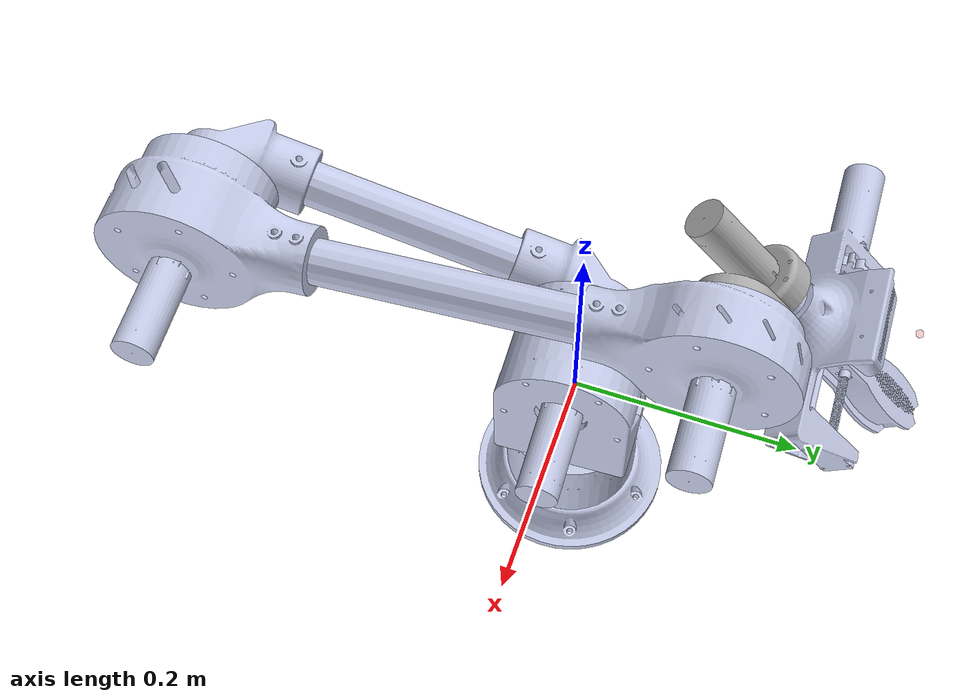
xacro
<?xml version="1.0"?>
<robot xmlns:xacro="http://www.ros.org/wiki/xacro" name="new_manipulator">

  <link name="world"/>
    <joint name="base_joint" type="fixed">
       <parent link="world"/>
       <child link="base_link"/>
       <origin rpy="0 0 0" xyz="0.0 0.0 -0.17"/>
    </joint>
  <link
    name="base_link">
    <inertial>
      <origin
        xyz="-4.43954839834948E-07 1.95574043973523E-07 0.0440575497912232"
        rpy="0 0 0" />
      <mass
        value="1.34805797919581" />
      <inertia
        ixx="0.00183694205703787"
        ixy="5.0361464147788E-10"
        ixz="-5.92029157041244E-09"
        iyy="0.00183693853196773"
        iyz="4.98996166768538E-09"
        izz="0.0033883673477115" />
    </inertial>
    <visual>
      <origin
        xyz="0 0 0"
        rpy="0 0 0" />
      <geometry>
        <mesh
          filename="package://new_manipulator/meshes/base_link.STL" />
      </geometry>
      <material
        name="">
        <color
          rgba="0.792156862745098 0.819607843137255 0.933333333333333 1" />
      </material>
    </visual>
    <collision>
      <origin
        xyz="0 0 0"
        rpy="0 0 0" />
      <geometry>
        <mesh
          filename="package://new_manipulator/meshes/base_link.STL" />
      </geometry>
    </collision>
  </link>
  <link
    name="link_1">
    <inertial>
      <origin
        xyz="0.0110500885540994 0.000490304989948245 0.178917154368919"
        rpy="0 0 0" />
      <mass
        value="1.72791251451532" />
      <inertia
        ixx="0.00405909858433948"
        ixy="3.88748531333619E-05"
        ixz="-0.000594874773801282"
        iyy="0.00318681108482776"
        iyz="-2.64513859322088E-05"
        izz="0.00260490202469402" />
    </inertial>
    <visual>
      <origin
        xyz="0 0 0"
        rpy="0 0 0" />
      <geometry>
        <mesh
          filename="package://new_manipulator/meshes/link_1.STL" />
      </geometry>
      <material
        name="">
        <color
          rgba="0.792156862745098 0.819607843137255 0.933333333333333 1" />
      </material>
    </visual>
    <collision>
      <origin
        xyz="0 0 0"
        rpy="0 0 0" />
      <geometry>
        <mesh
          filename="package://new_manipulator/meshes/link_1.STL" />
      </geometry>
    </collision>
  </link>
  <joint
    name="joint_1"
    type="revolute">
    <origin
      xyz="0 0 0"
      rpy="0 0 0" />
    <parent
      link="base_link" />
    <child
      link="link_1" />
    <axis
      xyz="0 0 1" />
    <limit
      lower="-3.14"
      upper="3.14"
      effort="0"
      velocity="0" />
  </joint>
  <link
    name="link_2">
    <inertial>
      <origin
        xyz="-0.17027759464071 0.0403800042896438 0.00767279863845977"
        rpy="0 0 0" />
      <mass
        value="0.563585271283537" />
      <inertia
        ixx="0.000360703734186374"
        ixy="0.000111701659743082"
        ixz="1.41189843579195E-11"
        iyy="0.000804395250404438"
        iyz="-7.43125516863313E-12"
        izz="0.000954580102346034" />
    </inertial>
    <visual>
      <origin
        xyz="0 0 0"
        rpy="0 0 0" />
      <geometry>
        <mesh
          filename="package://new_manipulator/meshes/link_2.STL" />
      </geometry>
      <material
        name="">
        <color
          rgba="0.792156862745098 0.819607843137255 0.933333333333333 1" />
      </material>
    </visual>
    <collision>
      <origin
        xyz="0 0 0"
        rpy="0 0 0" />
      <geometry>
        <mesh
          filename="package://new_manipulator/meshes/link_2.STL" />
      </geometry>
    </collision>
  </link>
  <joint
    name="joint_2"
    type="revolute">
    <origin
      xyz="-0.0717291734504882 -0.00318836574273278 0.204740000000002"
      rpy="1.5707963267949 0 1.61521714206045" />
    <parent
      link="link_1" />
    <child
      link="link_2" />
    <axis
      xyz="0 0 -1" />
    <limit
      lower="0"
      upper="3.14"
      effort="0"
      velocity="0" />
  </joint>
  <link
    name="link_3">
    <inertial>
      <origin
        xyz="0.127319930649459 0.25216230451183 -0.0134589515038893"
        rpy="0 0 0" />
      <mass
        value="1.88012020867171" />
      <inertia
        ixx="0.00553245606571612"
        ixy="-9.76768114159608E-05"
        ixz="2.24362816489402E-06"
        iyy="0.00232907764676428"
        iyz="8.12545637190079E-05"
        izz="0.00388219252209916" />
    </inertial>
    <visual>
      <origin
        xyz="0 0 0"
        rpy="0 0 0" />
      <geometry>
        <mesh
          filename="package://new_manipulator/meshes/link_3.STL" />
      </geometry>
      <material
        name="">
        <color
          rgba="0.792156862745098 0.819607843137255 0.933333333333333 1" />
      </material>
    </visual>
    <collision>
      <origin
        xyz="0 0 0"
        rpy="0 0 0" />
      <geometry>
        <mesh
          filename="package://new_manipulator/meshes/link_3.STL" />
      </geometry>
    </collision>
  </link>
  <joint
    name="joint_3"
    type="revolute">
    <origin
      xyz="-0.340555167924376 0.0807599999999998 0.2056"
      rpy="1.57079632679489 1.52637551152934 0" />
    <parent
      link="link_2" />
    <child
      link="link_3" />
    <axis
      xyz="0.99901355780628 -0.0444062081159649 0" />
    <limit
      lower="-6.28"
      upper="0"
      effort="0"
      velocity="0" />
  </joint>
  <link
    name="link_4">
    <inertial>
      <origin
        xyz="-0.00286295911161408 -0.0033310528321473 -0.0155644150837439"
        rpy="0 0 0" />
      <mass
        value="0.274650886544684" />
      <inertia
        ixx="0.000206617997807796"
        ixy="-9.17161275843459E-06"
        ixz="2.87691440396262E-05"
        iyy="0.00020382708602932"
        iyz="3.34799417908772E-05"
        izz="0.000169631700790225" />
    </inertial>
    <visual>
      <origin
        xyz="0 0 0"
        rpy="0 0 0" />
      <geometry>
        <mesh
          filename="package://new_manipulator/meshes/link_4.STL" />
      </geometry>
      <material
        name="">
        <color
          rgba="0.698039215686274 0.698039215686274 0.698039215686274 1" />
      </material>
    </visual>
    <collision>
      <origin
        xyz="0 0 0"
        rpy="0 0 0" />
      <geometry>
        <mesh
          filename="package://new_manipulator/meshes/link_4.STL" />
      </geometry>
    </collision>
  </link>
  <joint
    name="joint_4"
    type="revolute">
    <origin
      xyz="0.225840625490469 0.450789374227888 -0.0240273169809807"
      rpy="-1.5707963267949 0 -1.61521714206045" />
    <parent
      link="link_3" />
    <child
      link="link_4" />
    <axis
      xyz="0 0 1" />
    <limit
      lower="-3.14"
      upper="3.14"
      effort="0"
      velocity="0" />
  </joint>
  <link
    name="link_5">
    <inertial>
      <origin
        xyz="-0.0161286511466324 -0.121540549336517 -0.120240046011032"
        rpy="0 0 0" />
      <mass
        value="0.793421245273042" />
      <inertia
        ixx="0.000671724275010425"
        ixy="-2.51602478102574E-06"
        ixz="5.71344672478053E-05"
        iyy="0.00234595437058804"
        iyz="-8.95524412371202E-05"
        izz="0.00245703255566249" />
    </inertial>
    <visual>
      <origin
        xyz="0 0 0"
        rpy="0 0 0" />
      <geometry>
        <mesh
          filename="package://new_manipulator/meshes/link_5.STL" />
      </geometry>
      <material
        name="">
        <color
          rgba="0.792156862745098 0.819607843137255 0.933333333333333 1" />
      </material>
    </visual>
    <collision>
      <origin
        xyz="0 0 0"
        rpy="0 0 0" />
      <geometry>
        <mesh
          filename="package://new_manipulator/meshes/link_5.STL" />
      </geometry>
    </collision>
  </link>
  <joint
    name="joint_5"
    type="revolute">
    <origin
      xyz="0.0406026824799595 0.0472515838404573 0.00419999999999965"
      rpy="0 1.52637551152934 0" />
    <parent
      link="link_4" />
    <child
      link="link_5" />
    <axis
      xyz="-0.0289407892178395 -0.758452389092401 -0.651085558279" />
    <limit
      lower="-3.14"
      upper="3.14"
      effort="0"
      velocity="0" />
  </joint>
  <link name="fake_link">
  <inertial>
    <origin xyz="0 0 0" rpy="0 0 0"/>
    <mass value="0.001"/>
    <inertia
      ixx="0.000001"
      ixy="0"
      ixz="0"
      iyy="0.000001"
      iyz="0"
      izz="0.000001"/>
  </inertial>
  <!-- Visual element - small, almost invisible cube -->
  <visual>
    <origin xyz="0 0 0" rpy="0 0 0"/>
    <geometry>
      <box size="0.005 0.005 0.005"/>  <!-- 5mm cube -->
    </geometry>
    <material name="fake_link_material">
      <color rgba="1.0 0.0 0.0 0.1"/>  <!-- Red with 10% opacity - almost invisible -->
    </material>
  </visual>

  <!-- Collision element - same small cube -->
  <collision>
    <origin xyz="0 0 0" rpy="0 0 0"/>
    <geometry>
      <box size="0.005 0.005 0.005"/>  <!-- Same 5mm cube -->
    </geometry>
  </collision>
</link>
  <joint name="fake_joint" type="revolute">
  <parent link="link_5"/>
  <child link="fake_link"/>
  <origin xyz="-0.06 -0.175 -0.2" rpy="-0.3 2.355 1.37"/>
  <axis xyz="0 0 1"/>  <!-- Yaw axis -->
  <limit lower="-1.14159" upper="1.14159" effort="0" velocity="0"/>
</joint>

  <link
    name="link_6">
    <inertial>
      <origin
        xyz="0.0108654286467037 8.14608749427626E-07 -0.0432633009650766"
        rpy="0 0 0" />
      <mass
        value="0.015648613105591" />
      <inertia
        ixx="1.3023223565484E-05"
        ixy="-3.28837477065242E-10"
        ixz="2.89260541241974E-06"
        iyy="1.37500799513683E-05"
        iyz="2.83301118109962E-10"
        izz="2.23321010587839E-06" />
    </inertial>
    <visual>
      <origin
        xyz="0 0 0"
        rpy="0 0 0" />
      <geometry>
        <mesh
          filename="package://new_manipulator/meshes/link_6.STL" />
      </geometry>
      <material
        name="">
        <color
          rgba="0.792156862745098 0.819607843137255 0.933333333333333 1" />
      </material>
    </visual>
    <collision>
      <origin
        xyz="0 0 0"
        rpy="0 0 0" />
      <geometry>
        <mesh
          filename="package://new_manipulator/meshes/link_6.STL" />
      </geometry>
    </collision>
  </link>
  <joint
    name="joint_6"
    type="revolute">
    <origin
      xyz="-0.00126816406153663 -0.143195811060646 -0.123111459477163"
      rpy="-3.14159265358979 1.28032965574779 3.14159265358979" />
    <parent
      link="link_5" />
    <child
      link="link_6" />
    <axis
      xyz="0.243570815678046 0 -0.969883115509251" />
    <limit
      lower="0"
      upper="10"
      effort="0"
      velocity="0" />
  </joint>
  <link
    name="link_7">
    <inertial>
      <origin
        xyz="-0.0090100621942418 -6.67420022387732E-07 -0.0358850579570688"
        rpy="0 0 0" />
      <mass
        value="0.0157888075275909" />
      <inertia
        ixx="1.29943702003999E-05"
        ixy="6.88853386935521E-11"
        ixz="-2.88493495007699E-06"
        iyy="1.37197558455964E-05"
        iyz="2.55607088581921E-10"
        izz="2.23295306978442E-06" />
    </inertial>
    <visual>
      <origin
        xyz="0 0 0"
        rpy="0 0 0" />
      <geometry>
        <mesh
          filename="package://new_manipulator/meshes/link_7.STL" />
      </geometry>
      <material
        name="">
        <color
          rgba="0.792156862745098 0.819607843137255 0.933333333333333 1" />
      </material>
    </visual>
    <collision>
      <origin
        xyz="0 0 0"
        rpy="0 0 0" />
      <geometry>
        <mesh
          filename="package://new_manipulator/meshes/link_7.STL" />
      </geometry>
    </collision>
  </link>
  <joint
    name="joint_7"
    type="revolute">
    <origin
      xyz="-0.00228109168416107 -0.16974164467888 -0.145899454016928"
      rpy="3.14159265358979 -1.28032965574779 0" />
    <parent
      link="link_5" />
    <child
      link="link_7" />
    <axis
      xyz="0.243570815678046 0 0.969883115509251" />
    <limit
      lower="-10"
      upper="0"
      effort="0"
      velocity="0" />
    <mimic
      joint="joint_6"
      multiplier="-1"
      offset="0" />
  </joint>
  <link
    name="link_8">
    <inertial>
      <origin
        xyz="0.0358256039708998 -0.0445043988409441 0.0143492587166081"
        rpy="0 0 0" />
      <mass
        value="0.0572194405110706" />
      <inertia
        ixx="5.62419958813598E-05"
        ixy="3.59880864635103E-05"
        ixz="-1.17441450058187E-05"
        iyy="4.09971162464738E-05"
        iyz="1.25588916053587E-05"
        izz="8.76354462681182E-05" />
    </inertial>
    <visual>
      <origin
        xyz="0 0 0"
        rpy="0 0 0" />
      <geometry>
        <mesh
          filename="package://new_manipulator/meshes/link_8.STL" />
      </geometry>
      <material
        name="">
        <color
          rgba="0.792156862745098 0.819607843137255 0.933333333333333 1" />
      </material>
    </visual>
    <collision>
      <origin
        xyz="0 0 0"
        rpy="0 0 0" />
      <geometry>
        <mesh
          filename="package://new_manipulator/meshes/link_8.STL" />
      </geometry>
    </collision>
  </link>
  <joint
    name="joint_8"
    type="prismatic">
    <origin
      xyz="-0.00126816406153663 -0.143195811060646 -0.123111459477163"
      rpy="-3.14159265358979 1.28032965574779 3.14159265358979" />
    <parent
      link="link_5" />
    <child
      link="link_8" />
    <axis
      xyz="0.243570815678046 0 -0.969883115509251" />
    <limit
      lower="-0.042"
      upper="0"
      effort="0"
      velocity="0" />
    <mimic
      joint="joint_6"
      multiplier="-0.0042"
      offset="0" />
  </joint>
  <link
    name="link_9">
    <inertial>
      <origin
        xyz="-0.0154067548464904 0.0147289202001188 -0.00938576214369419"
        rpy="0 0 0" />
      <mass
        value="0.053232809936532" />
      <inertia
        ixx="4.77067601179768E-05"
        ixy="3.32704891885413E-05"
        ixz="6.1555611459591E-06"
        iyy="3.6515124816134E-05"
        iyz="-5.53805479239937E-06"
        izz="8.06111901253873E-05" />
    </inertial>
    <visual>
      <origin
        xyz="0 0 0"
        rpy="0 0 0" />
      <geometry>
        <mesh
          filename="package://new_manipulator/meshes/link_9.STL" />
      </geometry>
      <material
        name="">
        <color
          rgba="0.792156862745098 0.819607843137255 0.933333333333333 1" />
      </material>
    </visual>
    <collision>
      <origin
        xyz="0 0 0"
        rpy="0 0 0" />
      <geometry>
        <mesh
          filename="package://new_manipulator/meshes/link_9.STL" />
      </geometry>
    </collision>
  </link>
  <joint
    name="joint_9"
    type="prismatic">
    <origin
      xyz="-0.00228109168416107 -0.16974164467888 -0.145899454016928"
      rpy="3.14159265358979 -1.28032965574779 0" />
    <parent
      link="link_5" />
    <child
      link="link_9" />
    <axis
      xyz="0.243570815678046 0 0.969883115509251" />
    <limit
      lower="-0.042"
      upper="0"
      effort="0"
      velocity="0" />
    <mimic
      joint="joint_6"
      multiplier="-0.0042"
      offset="0" />
  </joint>

<!-- Copy ALL your existing content from model.urdf here, but REMOVE the ros2_control section -->

<!-- Include ros2_control configuration -->
<xacro:include filename="$(find new_manipulator)/urdf/ros2_control.xacro"/>

</robot>
